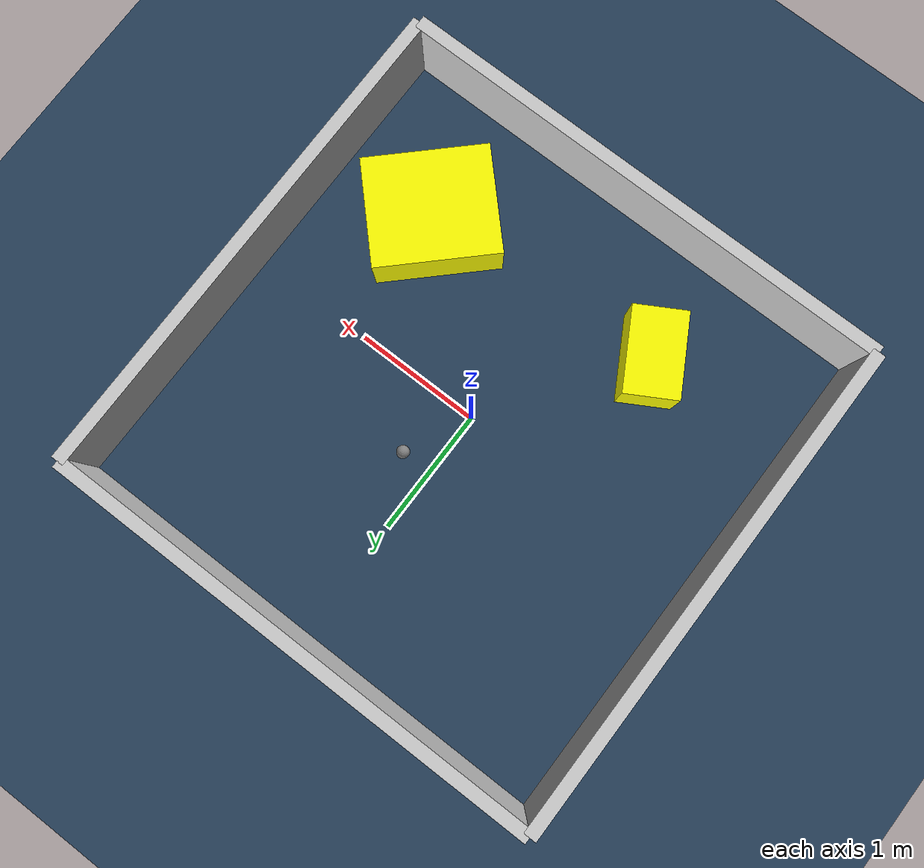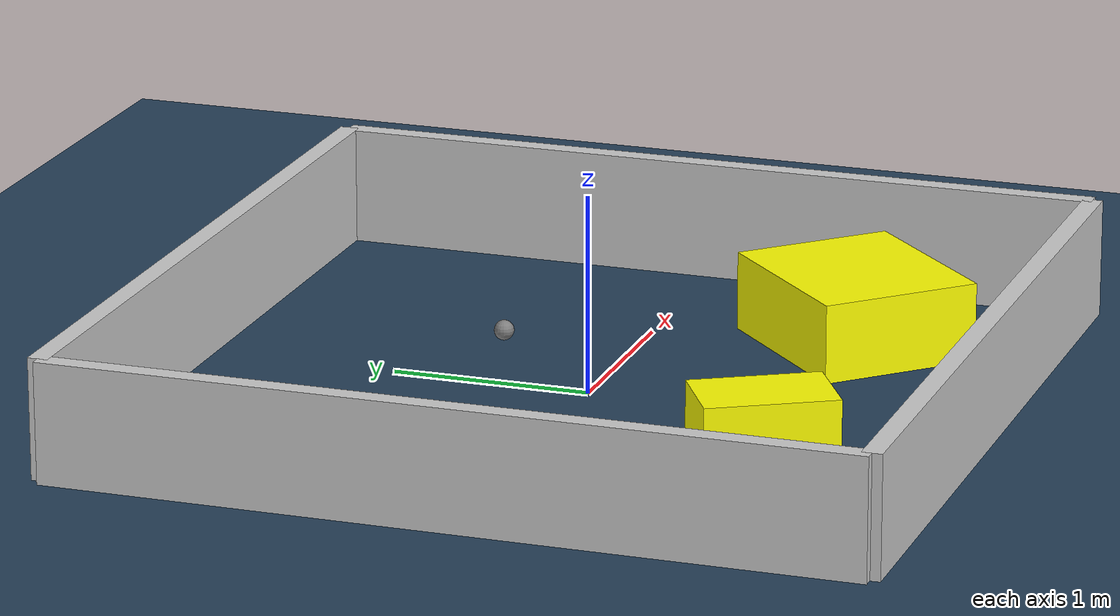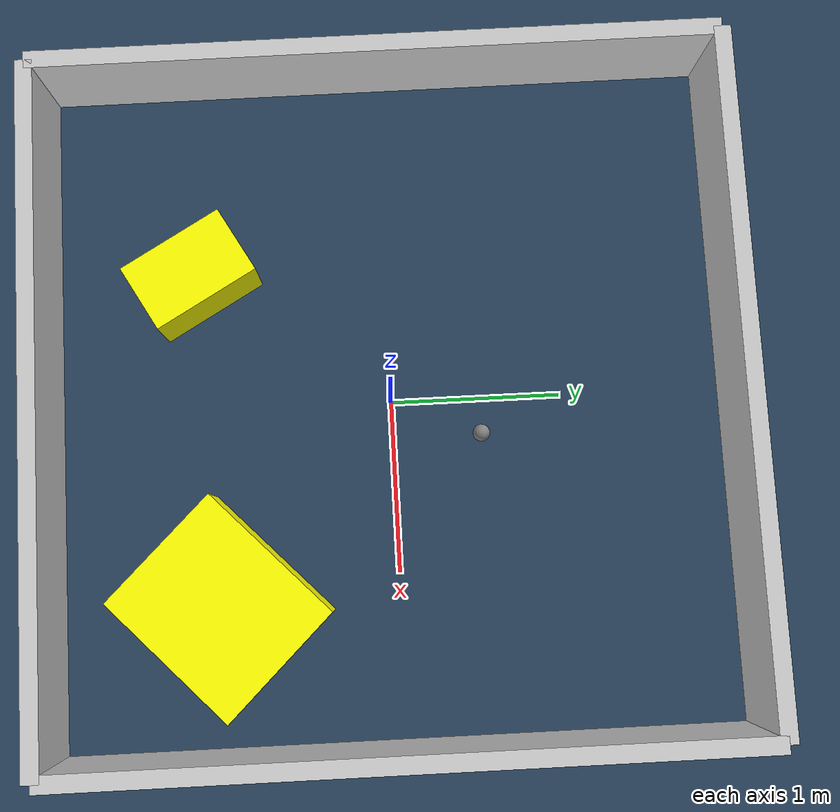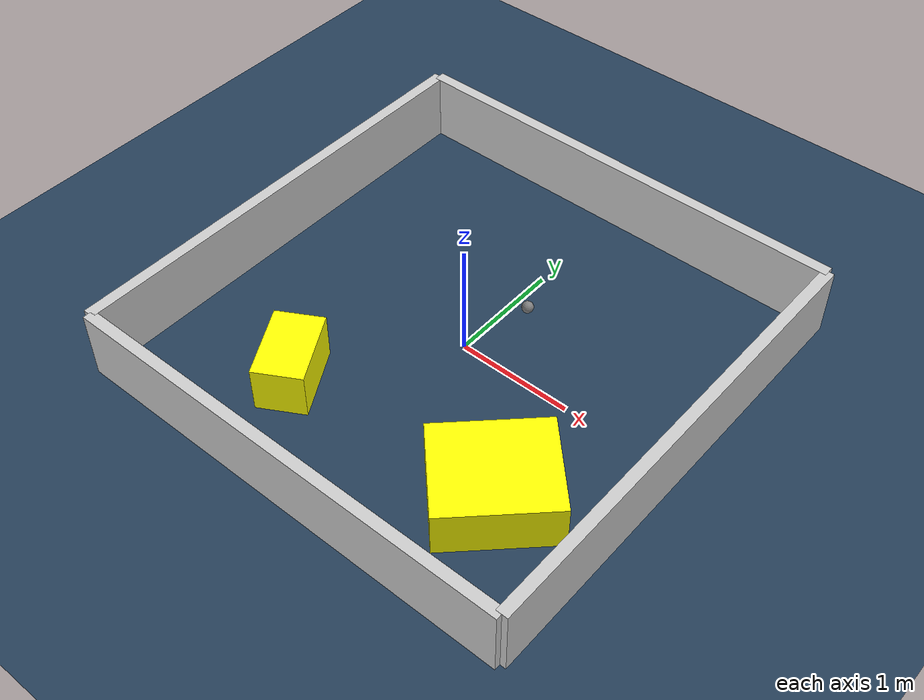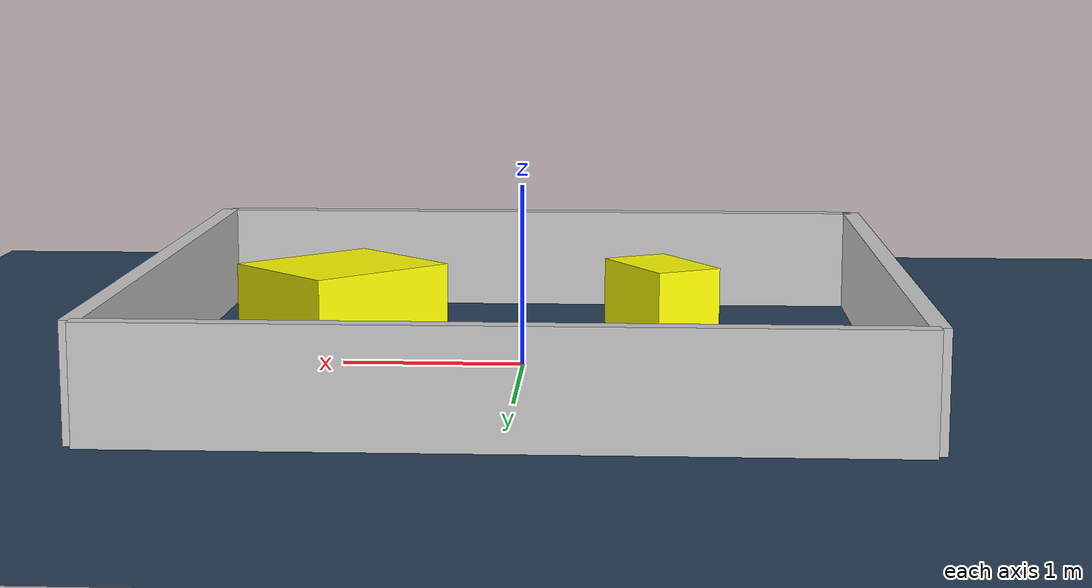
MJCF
<?xml version="1.0" ?>
<mujoco model="generated_environment">
  <option timestep="0.01" integrator="RK4" cone="elliptic"/>
  <default>
    <geom density="1"/>
  </default>
  <asset>
    <texture builtin="gradient" height="3072" rgb1="0.3 0.5 0.7" rgb2="0 0 0" type="skybox" width="512"/>
    <texture builtin="checker" height="300" mark="edge" markrgb="0.8 0.8 0.8" name="groundplane" rgb1="0.2 0.3 0.4" rgb2="0.1 0.2 0.3" type="2d" width="300"/>
    <material name="groundplane" reflectance="0.2" texrepeat="5 5" texture="groundplane" texuniform="true"/>
    <material name="robot" rgba="0.0 1.0 0.0 1"/>
  </asset>
  <worldbody>
    <light dir="0 0 -1" directional="true" pos="0 0 1.5"/>
    <geom condim="4" friction="1.0 0.005 0.001" material="groundplane" name="floor" size="0 0 0.05" type="plane"/>
    <body name="walls">
      <geom name="wall_1" condim="4" pos="-2.0 0.0 0.3" rgba="0.800000011920929 0.800000011920929 0.800000011920929 1.0" size="0.05 2.0 0.3" type="box"/>
      <geom name="wall_2" condim="4" pos="2.0 0.0 0.3" rgba="0.800000011920929 0.800000011920929 0.800000011920929 1.0" size="0.05 2.0 0.3" type="box"/>
      <geom name="wall_3" condim="4" pos="0.0 -2.0 0.3" rgba="0.800000011920929 0.800000011920929 0.800000011920929 1.0" size="2.0 0.05 0.3" type="box"/>
      <geom name="wall_4" condim="4" pos="0.0 2.0 0.3" rgba="0.800000011920929 0.800000011920929 0.800000011920929 1.0" size="2.0 0.05 0.3" type="box"/>
    </body>
    <body name="robot">
      <joint name="joint_x" type="slide" pos="0 0 0" axis="1 0 0"/>
      <joint name="joint_y" type="slide" pos="0 0 0" axis="0 1 0"/>
      <geom name="robot" type="sphere" pos="0.22571902670100785 0.5114095164189263 0.2" size="0.05" mass="5." friction="1.0 0.005 0.0001" condim="4"/>
      <site name="sensor_ball"/>
    </body>
    <body name="obstacle_1_movable">
      <geom name="obstacle_1_movable" condim="4" pos="-0.7825489834019155 -1.1279410625742243 0.2" euler="0 0 29.694422010561944" friction="1.0 0.005 0.001" rgba="1 1 0 1" size="0.20861533922886785 0.3273876302885876 0.2" type="box" mass="0.1"/>
      <joint type="free"/>
    </body>
    <body name="obstacle_2_movable">
      <geom name="obstacle_2_movable" condim="4" pos="1.1414473954957343 -1.0147485551567135 0.2" euler="0 0 224.12284755167565" friction="1.0 0.005 0.001" rgba="1 1 0 1" size="0.4779319456758584 0.4161089310442684 0.2" type="box" mass="0.1"/>
      <joint type="free"/>
    </body>
  </worldbody>
  <actuator>
    <motor name="actuator_x" joint="joint_x" gear="1" ctrlrange="-1 1"/>
    <motor name="actuator_y" joint="joint_y" gear="1" ctrlrange="-1 1"/>
  </actuator>
</mujoco>
